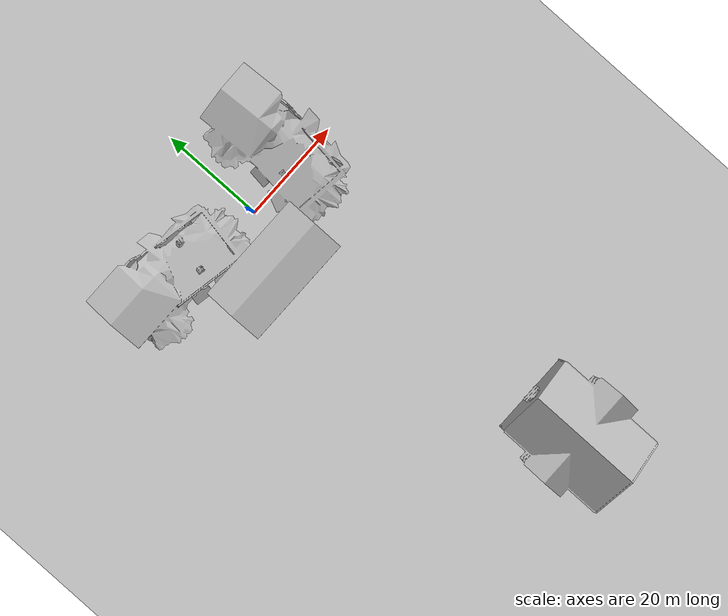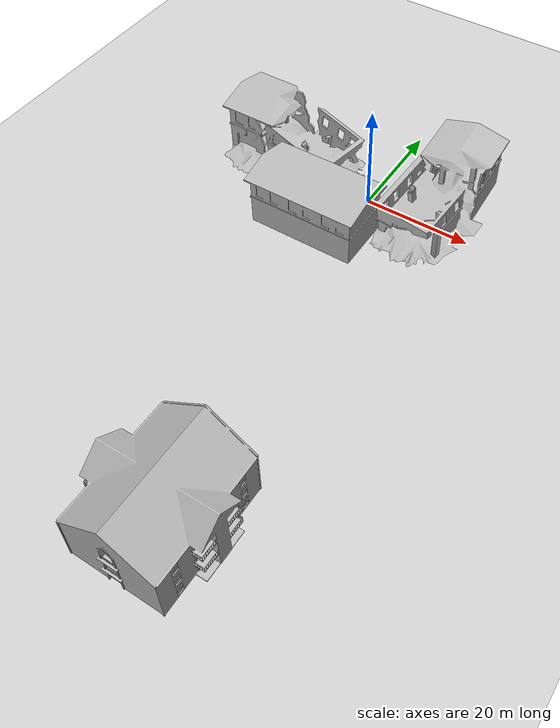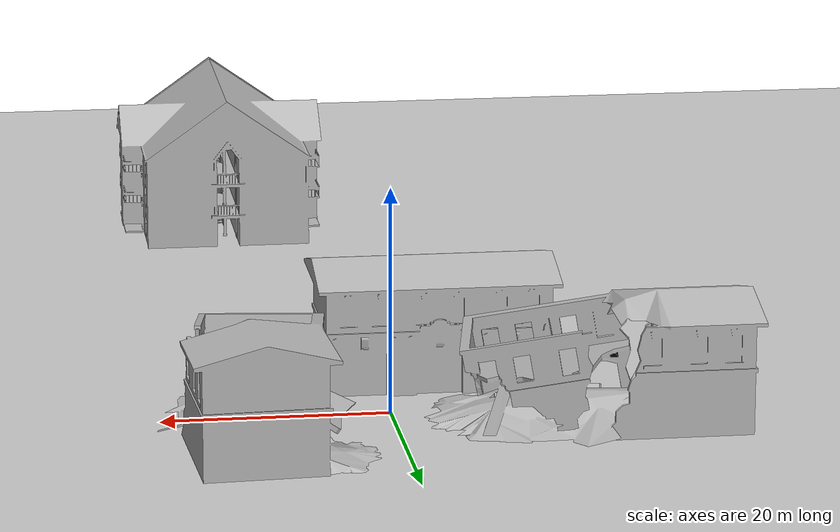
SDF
<sdf version="1.6">
 <world name="default">
  <light name="sun" type="directional">
   <pose>0 0 10 0 -0 0</pose>
   <diffuse>0.8 0.8 0.8 1</diffuse>
   <specular>0.1 0.1 0.1 1</specular>
   <attenuation>
    <range>1000</range>
    <constant>0.9</constant>
    <linear>0.01</linear>
    <quadratic>0.001</quadratic>
   </attenuation>
   <direction>-0.5 0.5 -1</direction>
  </light>
  <model name="ground_plane">
   <static>1</static>
   <link name="link">
    <collision name="collision">
     <geometry><plane><normal>0 0 1</normal><size>100 100</size></plane></geometry>
     <surface><friction><ode><mu>100</mu><mu2>50</mu2></ode></friction></surface>
    </collision>
    <visual name="visual">
     <cast_shadows>0</cast_shadows>
     <geometry><plane><normal>0 0 1</normal><size>100 100</size></plane></geometry>
     <material>
      <script><uri>file://media/materials/scripts/gazebo.material</uri><name>Gazebo/Grey</name></script>
     </material>
    </visual>
   </link>
  </model>
  <gravity>0 0 -9.8</gravity>
  <magnetic_field>6e-06 2.3e-05 -4.2e-05</magnetic_field>
  <atmosphere type="adiabatic"/>
  <physics name="default_physics" default="0" type="ode">
   <max_step_size>0.001</max_step_size>
   <real_time_factor>1</real_time_factor>
   <real_time_update_rate>1000</real_time_update_rate>
  </physics>
  <scene><ambient>0.4 0.4 0.4 1</ambient><background>0.7 0.7 0.7 1</background><shadows>1</shadows></scene>
  <spherical_coordinates>
   <surface_model>EARTH_WGS84</surface_model>
   <latitude_deg>0</latitude_deg>
   <longitude_deg>0</longitude_deg>
   <elevation>0</elevation>
   <heading_deg>0</heading_deg>
  </spherical_coordinates>
  <model name="collapsed_fire_station">
   <static>1</static>
   <link name="link">
    <collision name="collision">
     <geometry>
      <mesh><uri>model://collapsed_fire_station/meshes/collapsed_fire_station.dae</uri><scale>1 1 1</scale></mesh>
     </geometry>
    </collision>
    <visual name="visual">
     <geometry>
      <mesh><uri>model://collapsed_fire_station/meshes/collapsed_fire_station.dae</uri><scale>1 1 1</scale></mesh>
     </geometry>
    </visual>
   </link>
   <pose>-16.7087 2.92807 0 0 -0 0</pose>
  </model>
  <model name="apartment">
   <static>1</static>
   <link name="link">
    <collision name="collision">
     <geometry><mesh><uri>model://apartment/meshes/apartment.dae</uri><scale>1 1 1</scale></mesh></geometry>
    </collision>
    <visual name="visual">
     <geometry><mesh><uri>model://apartment/meshes/apartment.dae</uri><scale>1 1 1</scale></mesh></geometry>
    </visual>
   </link>
   <pose>8.86214 -69.1375 0 0 -0 0</pose>
  </model>
  <model name="collapsed_fire_station_0">
   <static>1</static>
   <link name="link">
    <collision name="collision">
     <geometry>
      <mesh><uri>model://collapsed_fire_station/meshes/collapsed_fire_station.dae</uri><scale>1 1 1</scale></mesh>
     </geometry>
    </collision>
    <visual name="visual">
     <geometry>
      <mesh><uri>model://collapsed_fire_station/meshes/collapsed_fire_station.dae</uri><scale>1 1 1</scale></mesh>
     </geometry>
    </visual>
   </link>
   <pose>11.5088 3.35737 0 0 0 -1.51679</pose>
  </model>
  <model name="fire_station">
   <static>1</static>
   <link name="link">
    <collision name="main">
     <pose>0 -0.135 5 0 -0 0</pose>
     <geometry><box><size>19.98 9.68 10</size></box></geometry>
    </collision>
    <collision name="front_top">
     <pose>0 4.957 7 0 -0 0</pose>
     <geometry><box><size>20 0.515 6</size></box></geometry>
    </collision>
    <collision name="column_0">
     <pose>9.333 4.957 2 0 -0 0</pose>
     <geometry><box><size>1.315 0.515 4</size></box></geometry>
    </collision>
    <collision name="column_1">
     <pose>3.33 4.957 2 0 -0 0</pose>
     <geometry><box><size>2.63 0.515 4</size></box></geometry>
    </collision>
    <collision name="column_2">
     <pose>-3.33 4.957 2 0 -0 0</pose>
     <geometry><box><size>2.63 0.515 4</size></box></geometry>
    </collision>
    <collision name="column_3">
     <pose>-9.333 4.957 2 0 -0 0</pose>
     <geometry><box><size>1.315 0.515 4</size></box></geometry>
    </collision>
    <collision name="roof_back">
     <pose>0 -2.742 10.467 0.25 -0 0</pose>
     <geometry><box><size>21.47 6.12 0.28</size></box></geometry>
    </collision>
    <collision name="roof_front">
     <pose>0 3.12 10.467 -0.25 0 0</pose>
     <geometry><box><size>21.47 6.12 0.28</size></box></geometry>
    </collision>
    <collision name="roof_base">
     <pose>0 0.188 9.705 0 -0 0</pose>
     <geometry><box><size>21.47 11.86 0.28</size></box></geometry>
    </collision>
    <collision name="roof_filling_0">
     <pose>0 0.188 9.985 0 -0 0</pose>
     <geometry><box><size>21.47 9.53 0.28</size></box></geometry>
    </collision>
    <collision name="roof_filling_1">
     <pose>0 0.188 10.14 0 -0 0</pose>
     <geometry><box><size>21.47 8.41 0.28</size></box></geometry>
    </collision>
    <collision name="roof_filling_2">
     <pose>0 0.188 10.42 0 -0 0</pose>
     <geometry><box><size>21.47 6.25 0.28</size></box></geometry>
    </collision>
    <collision name="roof_filling_3">
     <pose>0 0.188 10.7 0 -0 0</pose>
     <geometry><box><size>21.47 4.05 0.28</size></box></geometry>
    </collision>
    <collision name="roof_filling_4">
     <pose>0 0.188 10.98 0 -0 0</pose>
     <geometry><box><size>21.47 1.83 0.28</size></box></geometry>
    </collision>
    <visual name="visual">
     <geometry><mesh><uri>model://fire_station/meshes/fire_station.dae</uri><scale>1 1 1</scale></mesh></geometry>
    </visual>
   </link>
   <pose>-4.98194 -10.2388 0 0 -0 0</pose>
  </model>
 </world>
</sdf>
